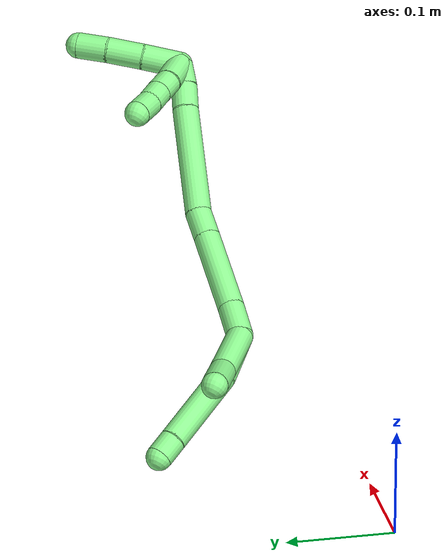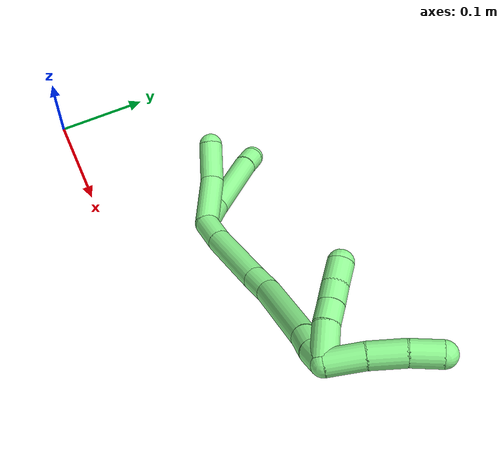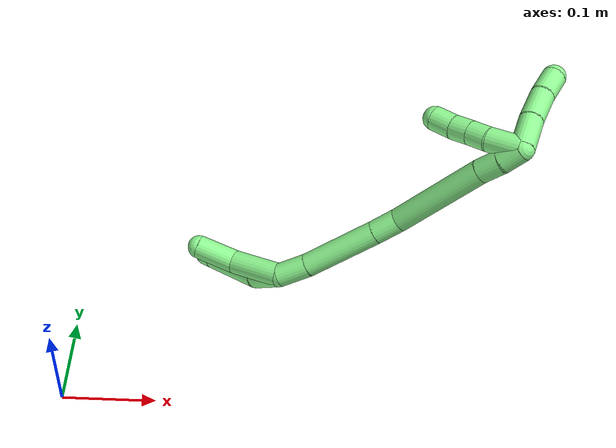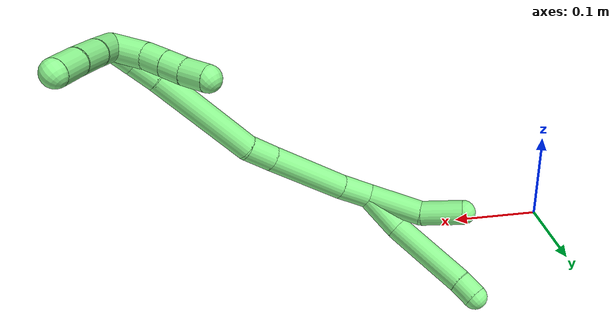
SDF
<sdf version="1.7">
 <world name="default">
  <model name="13">
   <static>0</static>
   <link name="13">
    <collision name="collision-cylinder-e_1_2_8">
     <pose>-0.000954 0.000255 -0.022103 -3.13005 -0.043113 2.61829</pose>
     <geometry><cylinder><radius>0.0125</radius><length>0.04425</length></cylinder></geometry>
     <surface>
      <friction><ode><mu>1.16</mu><mu2>1.16</mu2><slip1>0</slip1><slip2>0</slip2></ode></friction>
      <contact><ode><kp>1e+06</kp><kd>1</kd><max_vel>0</max_vel><min_depth>0.001</min_depth></ode></contact>
     </surface>
    </collision>
    <visual name="visual-cylinder-e_1_2_8">
     <pose>-0.000954 0.000255 -0.022103 -3.13005 -0.043113 2.61829</pose>
     <geometry><cylinder><radius>0.0125</radius><length>0.04425</length></cylinder></geometry>
     <material><ambient>0.564706 0.984314 0.572549 1</ambient></material>
    </visual>
    <collision name="collision-cylinder-e_2_8_9">
     <pose>-0.000324 0.012608 -0.084631 -2.85082 0.037491 -0.254698</pose>
     <geometry><cylinder><radius>0.0125</radius><length>0.084454</length></cylinder></geometry>
     <surface>
      <friction><ode><mu>1.16</mu><mu2>1.16</mu2><slip1>0</slip1><slip2>0</slip2></ode></friction>
      <contact><ode><kp>1e+06</kp><kd>1</kd><max_vel>0</max_vel><min_depth>0.001</min_depth></ode></contact>
     </surface>
    </collision>
    <visual name="visual-cylinder-e_2_8_9">
     <pose>-0.000324 0.012608 -0.084631 -2.85082 0.037491 -0.254698</pose>
     <geometry><cylinder><radius>0.0125</radius><length>0.084454</length></cylinder></geometry>
     <material><ambient>0.564706 0.984314 0.572549 1</ambient></material>
    </visual>
    <collision name="collision-cylinder-e_3_9_6">
     <pose>0.00233 0.027138 -0.135368 -2.90987 0.100813 -0.818072</pose>
     <geometry><cylinder><radius>0.0125</radius><length>0.021297</length></cylinder></geometry>
     <surface>
      <friction><ode><mu>1.16</mu><mu2>1.16</mu2><slip1>0</slip1><slip2>0</slip2></ode></friction>
      <contact><ode><kp>1e+06</kp><kd>1</kd><max_vel>0</max_vel><min_depth>0.001</min_depth></ode></contact>
     </surface>
    </collision>
    <visual name="visual-cylinder-e_3_9_6">
     <pose>0.00233 0.027138 -0.135368 -2.90987 0.100813 -0.818072</pose>
     <geometry><cylinder><radius>0.0125</radius><length>0.021297</length></cylinder></geometry>
     <material><ambient>0.564706 0.984314 0.572549 1</ambient></material>
    </visual>
    <collision name="collision-cylinder-e_1_2_10">
     <pose>-0.008887 0.01251 -0.0241 -2.66279 -0.316318 1.15756</pose>
     <geometry><cylinder><radius>0.0125</radius><length>0.057141</length></cylinder></geometry>
     <surface>
      <friction><ode><mu>1.16</mu><mu2>1.16</mu2><slip1>0</slip1><slip2>0</slip2></ode></friction>
      <contact><ode><kp>1e+06</kp><kd>1</kd><max_vel>0</max_vel><min_depth>0.001</min_depth></ode></contact>
     </surface>
    </collision>
    <visual name="visual-cylinder-e_1_2_10">
     <pose>-0.008887 0.01251 -0.0241 -2.66279 -0.316318 1.15756</pose>
     <geometry><cylinder><radius>0.0125</radius><length>0.057141</length></cylinder></geometry>
     <material><ambient>0.564706 0.984314 0.572549 1</ambient></material>
    </visual>
    <collision name="collision-cylinder-e_2_10_5">
     <pose>-0.027766 0.038704 -0.06132 -2.33517 -0.485053 1.05109</pose>
     <geometry><cylinder><radius>0.0125</radius><length>0.042859</length></cylinder></geometry>
     <surface>
      <friction><ode><mu>1.16</mu><mu2>1.16</mu2><slip1>0</slip1><slip2>0</slip2></ode></friction>
      <contact><ode><kp>1e+06</kp><kd>1</kd><max_vel>0</max_vel><min_depth>0.001</min_depth></ode></contact>
     </surface>
    </collision>
    <visual name="visual-cylinder-e_2_10_5">
     <pose>-0.027766 0.038704 -0.06132 -2.33517 -0.485053 1.05109</pose>
     <geometry><cylinder><radius>0.0125</radius><length>0.042859</length></cylinder></geometry>
     <material><ambient>0.564706 0.984314 0.572549 1</ambient></material>
    </visual>
    <collision name="collision-cylinder-e_1_2_11">
     <pose>0.01112 0.000628 0.012896 -0.048659 0.710986 -0.018069</pose>
     <geometry><cylinder><radius>0.0125</radius><length>0.03408</length></cylinder></geometry>
     <surface>
      <friction><ode><mu>1.16</mu><mu2>1.16</mu2><slip1>0</slip1><slip2>0</slip2></ode></friction>
      <contact><ode><kp>1e+06</kp><kd>1</kd><max_vel>0</max_vel><min_depth>0.001</min_depth></ode></contact>
     </surface>
    </collision>
    <visual name="visual-cylinder-e_1_2_11">
     <pose>0.01112 0.000628 0.012896 -0.048659 0.710986 -0.018069</pose>
     <geometry><cylinder><radius>0.0125</radius><length>0.03408</length></cylinder></geometry>
     <material><ambient>0.564706 0.984314 0.572549 1</ambient></material>
    </visual>
    <collision name="collision-cylinder-e_2_11_12">
     <pose>0.0485 0.007079 0.056497 -0.187409 0.698815 -0.068458</pose>
     <geometry><cylinder><radius>0.0125</radius><length>0.081641</length></cylinder></geometry>
     <surface>
      <friction><ode><mu>1.16</mu><mu2>1.16</mu2><slip1>0</slip1><slip2>0</slip2></ode></friction>
      <contact><ode><kp>1e+06</kp><kd>1</kd><max_vel>0</max_vel><min_depth>0.001</min_depth></ode></contact>
     </surface>
    </collision>
    <visual name="visual-cylinder-e_2_11_12">
     <pose>0.0485 0.007079 0.056497 -0.187409 0.698815 -0.068458</pose>
     <geometry><cylinder><radius>0.0125</radius><length>0.081641</length></cylinder></geometry>
     <material><ambient>0.564706 0.984314 0.572549 1</ambient></material>
    </visual>
    <collision name="collision-cylinder-e_3_12_13">
     <pose>0.083859 0.015342 0.097848 -0.225396 0.694602 -0.081888</pose>
     <geometry><cylinder><radius>0.0125</radius><length>0.028431</length></cylinder></geometry>
     <surface>
      <friction><ode><mu>1.16</mu><mu2>1.16</mu2><slip1>0</slip1><slip2>0</slip2></ode></friction>
      <contact><ode><kp>1e+06</kp><kd>1</kd><max_vel>0</max_vel><min_depth>0.001</min_depth></ode></contact>
     </surface>
    </collision>
    <visual name="visual-cylinder-e_3_12_13">
     <pose>0.083859 0.015342 0.097848 -0.225396 0.694602 -0.081888</pose>
     <geometry><cylinder><radius>0.0125</radius><length>0.028431</length></cylinder></geometry>
     <material><ambient>0.564706 0.984314 0.572549 1</ambient></material>
    </visual>
    <collision name="collision-cylinder-e_4_13_14">
     <pose>0.116379 0.030882 0.154711 -0.276183 0.453641 -0.064127</pose>
     <geometry><cylinder><radius>0.0125</radius><length>0.106885</length></cylinder></geometry>
     <surface>
      <friction><ode><mu>1.16</mu><mu2>1.16</mu2><slip1>0</slip1><slip2>0</slip2></ode></friction>
      <contact><ode><kp>1e+06</kp><kd>1</kd><max_vel>0</max_vel><min_depth>0.001</min_depth></ode></contact>
     </surface>
    </collision>
    <visual name="visual-cylinder-e_4_13_14">
     <pose>0.116379 0.030882 0.154711 -0.276183 0.453641 -0.064127</pose>
     <geometry><cylinder><radius>0.0125</radius><length>0.106885</length></cylinder></geometry>
     <material><ambient>0.564706 0.984314 0.572549 1</ambient></material>
    </visual>
    <collision name="collision-cylinder-e_5_14_15">
     <pose>0.145211 0.04585 0.212094 -0.165792 0.445823 -0.037663</pose>
     <geometry><cylinder><radius>0.0125</radius><length>0.025096</length></cylinder></geometry>
     <surface>
      <friction><ode><mu>1.16</mu><mu2>1.16</mu2><slip1>0</slip1><slip2>0</slip2></ode></friction>
      <contact><ode><kp>1e+06</kp><kd>1</kd><max_vel>0</max_vel><min_depth>0.001</min_depth></ode></contact>
     </surface>
    </collision>
    <visual name="visual-cylinder-e_5_14_15">
     <pose>0.145211 0.04585 0.212094 -0.165792 0.445823 -0.037663</pose>
     <geometry><cylinder><radius>0.0125</radius><length>0.025096</length></cylinder></geometry>
     <material><ambient>0.564706 0.984314 0.572549 1</ambient></material>
    </visual>
    <collision name="collision-cylinder-e_6_15_1">
     <pose>0.156656 0.050667 0.233124 -0.290486 0.530175 -0.079378</pose>
     <geometry><cylinder><radius>0.0125</radius><length>0.023867</length></cylinder></geometry>
     <surface>
      <friction><ode><mu>1.16</mu><mu2>1.16</mu2><slip1>0</slip1><slip2>0</slip2></ode></friction>
      <contact><ode><kp>1e+06</kp><kd>1</kd><max_vel>0</max_vel><min_depth>0.001</min_depth></ode></contact>
     </surface>
    </collision>
    <visual name="visual-cylinder-e_6_15_1">
     <pose>0.156656 0.050667 0.233124 -0.290486 0.530175 -0.079378</pose>
     <geometry><cylinder><radius>0.0125</radius><length>0.023867</length></cylinder></geometry>
     <material><ambient>0.564706 0.984314 0.572549 1</ambient></material>
    </visual>
    <collision name="collision-cylinder-e_1_1_16">
     <pose>0.177366 0.063541 0.239226 -1.93311 0.944662 -1.27417</pose>
     <geometry><cylinder><radius>0.0125</radius><length>0.036223</length></cylinder></geometry>
     <surface>
      <friction><ode><mu>1.16</mu><mu2>1.16</mu2><slip1>0</slip1><slip2>0</slip2></ode></friction>
      <contact><ode><kp>1e+06</kp><kd>1</kd><max_vel>0</max_vel><min_depth>0.001</min_depth></ode></contact>
     </surface>
    </collision>
    <visual name="visual-cylinder-e_1_1_16">
     <pose>0.177366 0.063541 0.239226 -1.93311 0.944662 -1.27417</pose>
     <geometry><cylinder><radius>0.0125</radius><length>0.036223</length></cylinder></geometry>
     <material><ambient>0.564706 0.984314 0.572549 1</ambient></material>
    </visual>
    <collision name="collision-cylinder-e_2_16_17">
     <pose>0.206897 0.081423 0.232275 -1.95197 1.04735 -1.41308</pose>
     <geometry><cylinder><radius>0.0125</radius><length>0.034302</length></cylinder></geometry>
     <surface>
      <friction><ode><mu>1.16</mu><mu2>1.16</mu2><slip1>0</slip1><slip2>0</slip2></ode></friction>
      <contact><ode><kp>1e+06</kp><kd>1</kd><max_vel>0</max_vel><min_depth>0.001</min_depth></ode></contact>
     </surface>
    </collision>
    <visual name="visual-cylinder-e_2_16_17">
     <pose>0.206897 0.081423 0.232275 -1.95197 1.04735 -1.41308</pose>
     <geometry><cylinder><radius>0.0125</radius><length>0.034302</length></cylinder></geometry>
     <material><ambient>0.564706 0.984314 0.572549 1</ambient></material>
    </visual>
    <collision name="collision-cylinder-e_3_17_4">
     <pose>0.235252 0.094662 0.226436 -2.03581 1.15829 -1.62878</pose>
     <geometry><cylinder><radius>0.0125</radius><length>0.029475</length></cylinder></geometry>
     <surface>
      <friction><ode><mu>1.16</mu><mu2>1.16</mu2><slip1>0</slip1><slip2>0</slip2></ode></friction>
      <contact><ode><kp>1e+06</kp><kd>1</kd><max_vel>0</max_vel><min_depth>0.001</min_depth></ode></contact>
     </surface>
    </collision>
    <visual name="visual-cylinder-e_3_17_4">
     <pose>0.235252 0.094662 0.226436 -2.03581 1.15829 -1.62878</pose>
     <geometry><cylinder><radius>0.0125</radius><length>0.029475</length></cylinder></geometry>
     <material><ambient>0.564706 0.984314 0.572549 1</ambient></material>
    </visual>
    <collision name="collision-cylinder-e_1_1_18">
     <pose>0.157259 0.06239 0.228538 -2.59589 -0.310859 1.02091</pose>
     <geometry><cylinder><radius>0.0125</radius><length>0.035513</length></cylinder></geometry>
     <surface>
      <friction><ode><mu>1.16</mu><mu2>1.16</mu2><slip1>0</slip1><slip2>0</slip2></ode></friction>
      <contact><ode><kp>1e+06</kp><kd>1</kd><max_vel>0</max_vel><min_depth>0.001</min_depth></ode></contact>
     </surface>
    </collision>
    <visual name="visual-cylinder-e_1_1_18">
     <pose>0.157259 0.06239 0.228538 -2.59589 -0.310859 1.02091</pose>
     <geometry><cylinder><radius>0.0125</radius><length>0.035513</length></cylinder></geometry>
     <material><ambient>0.564706 0.984314 0.572549 1</ambient></material>
    </visual>
    <collision name="collision-cylinder-e_2_18_19">
     <pose>0.1502 0.076208 0.20521 -2.62493 -0.158079 0.582461</pose>
     <geometry><cylinder><radius>0.0125</radius><length>0.020681</length></cylinder></geometry>
     <surface>
      <friction><ode><mu>1.16</mu><mu2>1.16</mu2><slip1>0</slip1><slip2>0</slip2></ode></friction>
      <contact><ode><kp>1e+06</kp><kd>1</kd><max_vel>0</max_vel><min_depth>0.001</min_depth></ode></contact>
     </surface>
    </collision>
    <visual name="visual-cylinder-e_2_18_19">
     <pose>0.1502 0.076208 0.20521 -2.62493 -0.158079 0.582461</pose>
     <geometry><cylinder><radius>0.0125</radius><length>0.020681</length></cylinder></geometry>
     <material><ambient>0.564706 0.984314 0.572549 1</ambient></material>
    </visual>
    <collision name="collision-cylinder-e_3_19_20">
     <pose>0.146807 0.086023 0.187568 -2.64308 -0.175165 0.664343</pose>
     <geometry><cylinder><radius>0.0125</radius><length>0.020264</length></cylinder></geometry>
     <surface>
      <friction><ode><mu>1.16</mu><mu2>1.16</mu2><slip1>0</slip1><slip2>0</slip2></ode></friction>
      <contact><ode><kp>1e+06</kp><kd>1</kd><max_vel>0</max_vel><min_depth>0.001</min_depth></ode></contact>
     </surface>
    </collision>
    <visual name="visual-cylinder-e_3_19_20">
     <pose>0.146807 0.086023 0.187568 -2.64308 -0.175165 0.664343</pose>
     <geometry><cylinder><radius>0.0125</radius><length>0.020264</length></cylinder></geometry>
     <material><ambient>0.564706 0.984314 0.572549 1</ambient></material>
    </visual>
    <collision name="collision-cylinder-e_4_20_3">
     <pose>0.143103 0.097449 0.169292 -2.53112 -0.165411 0.514518</pose>
     <geometry><cylinder><radius>0.0125</radius><length>0.023543</length></cylinder></geometry>
     <surface>
      <friction><ode><mu>1.16</mu><mu2>1.16</mu2><slip1>0</slip1><slip2>0</slip2></ode></friction>
      <contact><ode><kp>1e+06</kp><kd>1</kd><max_vel>0</max_vel><min_depth>0.001</min_depth></ode></contact>
     </surface>
    </collision>
    <visual name="visual-cylinder-e_4_20_3">
     <pose>0.143103 0.097449 0.169292 -2.53112 -0.165411 0.514518</pose>
     <geometry><cylinder><radius>0.0125</radius><length>0.023543</length></cylinder></geometry>
     <material><ambient>0.564706 0.984314 0.572549 1</ambient></material>
    </visual>
    <collision name="collision-sphere-3">
     <pose>0.141164 0.104105 0.159778 0 -0 0</pose>
     <geometry><sphere><radius>0.0125</radius></sphere></geometry>
     <surface>
      <friction><ode><mu>1.16</mu><mu2>1.16</mu2><slip1>0</slip1><slip2>0</slip2></ode></friction>
      <contact><ode><kp>1e+06</kp><kd>1</kd><max_vel>0</max_vel><min_depth>0.001</min_depth></ode></contact>
     </surface>
    </collision>
    <visual name="visual-sphere-3">
     <pose>0.141164 0.104105 0.159778 0 -0 0</pose>
     <geometry><sphere><radius>0.0125</radius></sphere></geometry>
     <material><ambient>0.564706 0.984314 0.572549 1</ambient></material>
    </visual>
    <collision name="collision-sphere-20">
     <pose>0.145041 0.090793 0.178806 0 -0 0</pose>
     <geometry><sphere><radius>0.0125</radius></sphere></geometry>
     <surface>
      <friction><ode><mu>1.16</mu><mu2>1.16</mu2><slip1>0</slip1><slip2>0</slip2></ode></friction>
      <contact><ode><kp>1e+06</kp><kd>1</kd><max_vel>0</max_vel><min_depth>0.001</min_depth></ode></contact>
     </surface>
    </collision>
    <visual name="visual-sphere-20">
     <pose>0.145041 0.090793 0.178806 0 -0 0</pose>
     <geometry><sphere><radius>0.0125</radius></sphere></geometry>
     <material><ambient>0.564706 0.984314 0.572549 1</ambient></material>
    </visual>
    <collision name="collision-sphere-19">
     <pose>0.148572 0.081253 0.196331 0 -0 0</pose>
     <geometry><sphere><radius>0.0125</radius></sphere></geometry>
     <surface>
      <friction><ode><mu>1.16</mu><mu2>1.16</mu2><slip1>0</slip1><slip2>0</slip2></ode></friction>
      <contact><ode><kp>1e+06</kp><kd>1</kd><max_vel>0</max_vel><min_depth>0.001</min_depth></ode></contact>
     </surface>
    </collision>
    <visual name="visual-sphere-19">
     <pose>0.148572 0.081253 0.196331 0 -0 0</pose>
     <geometry><sphere><radius>0.0125</radius></sphere></geometry>
     <material><ambient>0.564706 0.984314 0.572549 1</ambient></material>
    </visual>
    <collision name="collision-sphere-5">
     <pose>-0.037758 0.052388 -0.07444 0 -0 0</pose>
     <geometry><sphere><radius>0.0125</radius></sphere></geometry>
     <surface>
      <friction><ode><mu>1.16</mu><mu2>1.16</mu2><slip1>0</slip1><slip2>0</slip2></ode></friction>
      <contact><ode><kp>1e+06</kp><kd>1</kd><max_vel>0</max_vel><min_depth>0.001</min_depth></ode></contact>
     </surface>
    </collision>
    <visual name="visual-sphere-5">
     <pose>-0.037758 0.052388 -0.07444 0 -0 0</pose>
     <geometry><sphere><radius>0.0125</radius></sphere></geometry>
     <material><ambient>0.564706 0.984314 0.572549 1</ambient></material>
    </visual>
    <collision name="collision-sphere-10">
     <pose>-0.017775 0.02502 -0.048199 0 -0 0</pose>
     <geometry><sphere><radius>0.0125</radius></sphere></geometry>
     <surface>
      <friction><ode><mu>1.16</mu><mu2>1.16</mu2><slip1>0</slip1><slip2>0</slip2></ode></friction>
      <contact><ode><kp>1e+06</kp><kd>1</kd><max_vel>0</max_vel><min_depth>0.001</min_depth></ode></contact>
     </surface>
    </collision>
    <visual name="visual-sphere-10">
     <pose>-0.017775 0.02502 -0.048199 0 -0 0</pose>
     <geometry><sphere><radius>0.0125</radius></sphere></geometry>
     <material><ambient>0.564706 0.984314 0.572549 1</ambient></material>
    </visual>
    <collision name="collision-sphere-6">
     <pose>0.003402 0.029571 -0.14568 0 -0 0</pose>
     <geometry><sphere><radius>0.0125</radius></sphere></geometry>
     <surface>
      <friction><ode><mu>1.16</mu><mu2>1.16</mu2><slip1>0</slip1><slip2>0</slip2></ode></friction>
      <contact><ode><kp>1e+06</kp><kd>1</kd><max_vel>0</max_vel><min_depth>0.001</min_depth></ode></contact>
     </surface>
    </collision>
    <visual name="visual-sphere-6">
     <pose>0.003402 0.029571 -0.14568 0 -0 0</pose>
     <geometry><sphere><radius>0.0125</radius></sphere></geometry>
     <material><ambient>0.564706 0.984314 0.572549 1</ambient></material>
    </visual>
    <collision name="collision-sphere-9">
     <pose>0.001258 0.024705 -0.125057 0 -0 0</pose>
     <geometry><sphere><radius>0.0125</radius></sphere></geometry>
     <surface>
      <friction><ode><mu>1.16</mu><mu2>1.16</mu2><slip1>0</slip1><slip2>0</slip2></ode></friction>
      <contact><ode><kp>1e+06</kp><kd>1</kd><max_vel>0</max_vel><min_depth>0.001</min_depth></ode></contact>
     </surface>
    </collision>
    <visual name="visual-sphere-9">
     <pose>0.001258 0.024705 -0.125057 0 -0 0</pose>
     <geometry><sphere><radius>0.0125</radius></sphere></geometry>
     <material><ambient>0.564706 0.984314 0.572549 1</ambient></material>
    </visual>
    <collision name="collision-sphere-2">
     <geometry><sphere><radius>0.0125</radius></sphere></geometry>
     <surface>
      <friction><ode><mu>1.16</mu><mu2>1.16</mu2><slip1>0</slip1><slip2>0</slip2></ode></friction>
      <contact><ode><kp>1e+06</kp><kd>1</kd><max_vel>0</max_vel><min_depth>0.001</min_depth></ode></contact>
     </surface>
    </collision>
    <visual name="visual-sphere-2">
     <geometry><sphere><radius>0.0125</radius></sphere></geometry>
     <material><ambient>0.564706 0.984314 0.572549 1</ambient></material>
    </visual>
    <collision name="collision-sphere-8">
     <pose>-0.001907 0.00051 -0.044206 0 -0 0</pose>
     <geometry><sphere><radius>0.0125</radius></sphere></geometry>
     <surface>
      <friction><ode><mu>1.16</mu><mu2>1.16</mu2><slip1>0</slip1><slip2>0</slip2></ode></friction>
      <contact><ode><kp>1e+06</kp><kd>1</kd><max_vel>0</max_vel><min_depth>0.001</min_depth></ode></contact>
     </surface>
    </collision>
    <visual name="visual-sphere-8">
     <pose>-0.001907 0.00051 -0.044206 0 -0 0</pose>
     <geometry><sphere><radius>0.0125</radius></sphere></geometry>
     <material><ambient>0.564706 0.984314 0.572549 1</ambient></material>
    </visual>
    <collision name="collision-sphere-11">
     <pose>0.02224 0.001256 0.025792 0 -0 0</pose>
     <geometry><sphere><radius>0.0125</radius></sphere></geometry>
     <surface>
      <friction><ode><mu>1.16</mu><mu2>1.16</mu2><slip1>0</slip1><slip2>0</slip2></ode></friction>
      <contact><ode><kp>1e+06</kp><kd>1</kd><max_vel>0</max_vel><min_depth>0.001</min_depth></ode></contact>
     </surface>
    </collision>
    <visual name="visual-sphere-11">
     <pose>0.02224 0.001256 0.025792 0 -0 0</pose>
     <geometry><sphere><radius>0.0125</radius></sphere></geometry>
     <material><ambient>0.564706 0.984314 0.572549 1</ambient></material>
    </visual>
    <collision name="collision-sphere-12">
     <pose>0.07476 0.012901 0.087202 0 -0 0</pose>
     <geometry><sphere><radius>0.0125</radius></sphere></geometry>
     <surface>
      <friction><ode><mu>1.16</mu><mu2>1.16</mu2><slip1>0</slip1><slip2>0</slip2></ode></friction>
      <contact><ode><kp>1e+06</kp><kd>1</kd><max_vel>0</max_vel><min_depth>0.001</min_depth></ode></contact>
     </surface>
    </collision>
    <visual name="visual-sphere-12">
     <pose>0.07476 0.012901 0.087202 0 -0 0</pose>
     <geometry><sphere><radius>0.0125</radius></sphere></geometry>
     <material><ambient>0.564706 0.984314 0.572549 1</ambient></material>
    </visual>
    <collision name="collision-sphere-13">
     <pose>0.092958 0.017783 0.108494 0 -0 0</pose>
     <geometry><sphere><radius>0.0125</radius></sphere></geometry>
     <surface>
      <friction><ode><mu>1.16</mu><mu2>1.16</mu2><slip1>0</slip1><slip2>0</slip2></ode></friction>
      <contact><ode><kp>1e+06</kp><kd>1</kd><max_vel>0</max_vel><min_depth>0.001</min_depth></ode></contact>
     </surface>
    </collision>
    <visual name="visual-sphere-13">
     <pose>0.092958 0.017783 0.108494 0 -0 0</pose>
     <geometry><sphere><radius>0.0125</radius></sphere></geometry>
     <material><ambient>0.564706 0.984314 0.572549 1</ambient></material>
    </visual>
    <collision name="collision-sphere-14">
     <pose>0.1398 0.043982 0.200927 0 -0 0</pose>
     <geometry><sphere><radius>0.0125</radius></sphere></geometry>
     <surface>
      <friction><ode><mu>1.16</mu><mu2>1.16</mu2><slip1>0</slip1><slip2>0</slip2></ode></friction>
      <contact><ode><kp>1e+06</kp><kd>1</kd><max_vel>0</max_vel><min_depth>0.001</min_depth></ode></contact>
     </surface>
    </collision>
    <visual name="visual-sphere-14">
     <pose>0.1398 0.043982 0.200927 0 -0 0</pose>
     <geometry><sphere><radius>0.0125</radius></sphere></geometry>
     <material><ambient>0.564706 0.984314 0.572549 1</ambient></material>
    </visual>
    <collision name="collision-sphere-15">
     <pose>0.150621 0.047718 0.22326 0 -0 0</pose>
     <geometry><sphere><radius>0.0125</radius></sphere></geometry>
     <surface>
      <friction><ode><mu>1.16</mu><mu2>1.16</mu2><slip1>0</slip1><slip2>0</slip2></ode></friction>
      <contact><ode><kp>1e+06</kp><kd>1</kd><max_vel>0</max_vel><min_depth>0.001</min_depth></ode></contact>
     </surface>
    </collision>
    <visual name="visual-sphere-15">
     <pose>0.150621 0.047718 0.22326 0 -0 0</pose>
     <geometry><sphere><radius>0.0125</radius></sphere></geometry>
     <material><ambient>0.564706 0.984314 0.572549 1</ambient></material>
    </visual>
    <collision name="collision-sphere-1">
     <pose>0.16269 0.053616 0.242988 0 -0 0</pose>
     <geometry><sphere><radius>0.0125</radius></sphere></geometry>
     <surface>
      <friction><ode><mu>1.16</mu><mu2>1.16</mu2><slip1>0</slip1><slip2>0</slip2></ode></friction>
      <contact><ode><kp>1e+06</kp><kd>1</kd><max_vel>0</max_vel><min_depth>0.001</min_depth></ode></contact>
     </surface>
    </collision>
    <visual name="visual-sphere-1">
     <pose>0.16269 0.053616 0.242988 0 -0 0</pose>
     <geometry><sphere><radius>0.0125</radius></sphere></geometry>
     <material><ambient>0.564706 0.984314 0.572549 1</ambient></material>
    </visual>
    <collision name="collision-sphere-18">
     <pose>0.151828 0.071164 0.214088 0 -0 0</pose>
     <geometry><sphere><radius>0.0125</radius></sphere></geometry>
     <surface>
      <friction><ode><mu>1.16</mu><mu2>1.16</mu2><slip1>0</slip1><slip2>0</slip2></ode></friction>
      <contact><ode><kp>1e+06</kp><kd>1</kd><max_vel>0</max_vel><min_depth>0.001</min_depth></ode></contact>
     </surface>
    </collision>
    <visual name="visual-sphere-18">
     <pose>0.151828 0.071164 0.214088 0 -0 0</pose>
     <geometry><sphere><radius>0.0125</radius></sphere></geometry>
     <material><ambient>0.564706 0.984314 0.572549 1</ambient></material>
    </visual>
    <collision name="collision-sphere-16">
     <pose>0.192042 0.073465 0.235464 0 -0 0</pose>
     <geometry><sphere><radius>0.0125</radius></sphere></geometry>
     <surface>
      <friction><ode><mu>1.16</mu><mu2>1.16</mu2><slip1>0</slip1><slip2>0</slip2></ode></friction>
      <contact><ode><kp>1e+06</kp><kd>1</kd><max_vel>0</max_vel><min_depth>0.001</min_depth></ode></contact>
     </surface>
    </collision>
    <visual name="visual-sphere-16">
     <pose>0.192042 0.073465 0.235464 0 -0 0</pose>
     <geometry><sphere><radius>0.0125</radius></sphere></geometry>
     <material><ambient>0.564706 0.984314 0.572549 1</ambient></material>
    </visual>
    <collision name="collision-sphere-17">
     <pose>0.221751 0.089381 0.229086 0 -0 0</pose>
     <geometry><sphere><radius>0.0125</radius></sphere></geometry>
     <surface>
      <friction><ode><mu>1.16</mu><mu2>1.16</mu2><slip1>0</slip1><slip2>0</slip2></ode></friction>
      <contact><ode><kp>1e+06</kp><kd>1</kd><max_vel>0</max_vel><min_depth>0.001</min_depth></ode></contact>
     </surface>
    </collision>
    <visual name="visual-sphere-17">
     <pose>0.221751 0.089381 0.229086 0 -0 0</pose>
     <geometry><sphere><radius>0.0125</radius></sphere></geometry>
     <material><ambient>0.564706 0.984314 0.572549 1</ambient></material>
    </visual>
    <collision name="collision-sphere-4">
     <pose>0.248753 0.099943 0.223787 0 -0 0</pose>
     <geometry><sphere><radius>0.0125</radius></sphere></geometry>
     <surface>
      <friction><ode><mu>1.16</mu><mu2>1.16</mu2><slip1>0</slip1><slip2>0</slip2></ode></friction>
      <contact><ode><kp>1e+06</kp><kd>1</kd><max_vel>0</max_vel><min_depth>0.001</min_depth></ode></contact>
     </surface>
    </collision>
    <visual name="visual-sphere-4">
     <pose>0.248753 0.099943 0.223787 0 -0 0</pose>
     <geometry><sphere><radius>0.0125</radius></sphere></geometry>
     <material><ambient>0.564706 0.984314 0.572549 1</ambient></material>
    </visual>
    <inertial>
     <pose>0.080424 0.03525 0.084929 0 -0 0</pose>
     <mass>0.75</mass>
     <inertia>
      <ixx>0.000223</ixx>
      <ixy>0</ixy>
      <ixz>0</ixz>
      <iyy>0.000141</iyy>
      <iyz>0</iyz>
      <izz>-0.000167</izz>
     </inertia>
    </inertial>
   </link>
   <pose>0.227477 0.09549 0.100046 0.858788 0.104069 0.73187</pose>
  </model>
 </world>
</sdf>
